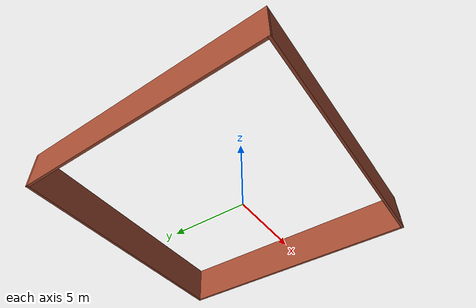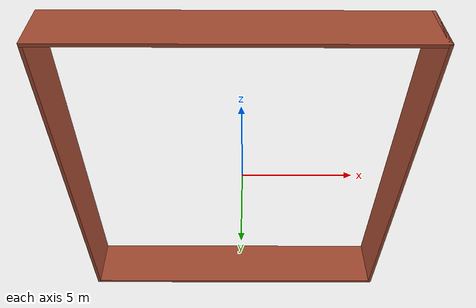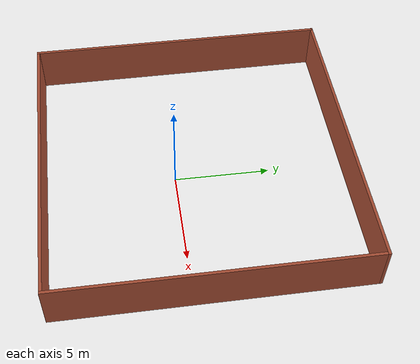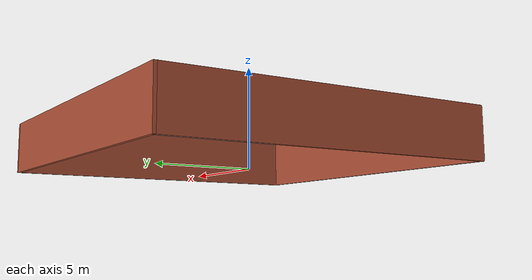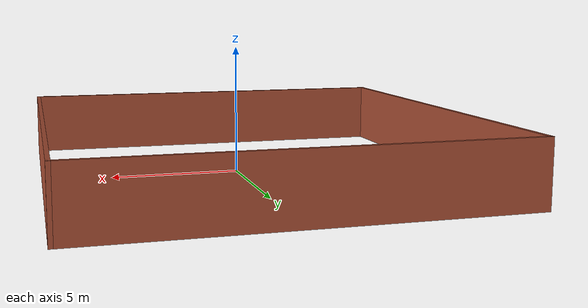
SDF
<?xml version='1.0'?>
<sdf version='1.6'>
  <model name='simple'>
    <pose>-0.345 1.085 0 0 -0 0</pose>
    <link name='Wall_21'>
      <collision name='Wall_21_Collision'>
        <geometry>
          <box>
            <size>16 0.15 2.5</size>
          </box>
        </geometry>
        <pose>0 0 1.25 0 -0 0</pose>
      </collision>
      <visual name='Wall_21_Visual'>
        <pose>0 0 1.25 0 -0 0</pose>
        <geometry>
          <box>
            <size>16 0.15 2.5</size>
          </box>
        </geometry>
        <material>
          <script>
            <uri>file://media/materials/scripts/gazebo.material</uri>
            <name>Gazebo/Bricks</name>
          </script>
          <ambient>1 1 1 1</ambient>
        </material>
        <meta>
          <layer>0</layer>
        </meta>
      </visual>
      <pose>0 -7.925 0 0 -0 0</pose>
    </link>
    <link name='Wall_23'>
      <collision name='Wall_23_Collision'>
        <geometry>
          <box>
            <size>16 0.15 2.5</size>
          </box>
        </geometry>
        <pose>0 0 1.25 0 -0 0</pose>
      </collision>
      <visual name='Wall_23_Visual'>
        <pose>0 0 1.25 0 -0 0</pose>
        <geometry>
          <box>
            <size>16 0.15 2.5</size>
          </box>
        </geometry>
        <material>
          <script>
            <uri>file://media/materials/scripts/gazebo.material</uri>
            <name>Gazebo/Bricks</name>
          </script>
          <ambient>1 1 1 1</ambient>
        </material>
        <meta>
          <layer>0</layer>
        </meta>
      </visual>
      <pose>7.925 0 0 0 -0 1.5708</pose>
    </link>
    <link name='Wall_24'>
      <collision name='Wall_24_Collision'>
        <geometry>
          <box>
            <size>16 0.15 2.5</size>
          </box>
        </geometry>
        <pose>0 0 1.25 0 -0 0</pose>
      </collision>
      <visual name='Wall_24_Visual'>
        <pose>0 0 1.25 0 -0 0</pose>
        <geometry>
          <box>
            <size>16 0.15 2.5</size>
          </box>
        </geometry>
        <material>
          <script>
            <uri>file://media/materials/scripts/gazebo.material</uri>
            <name>Gazebo/Bricks</name>
          </script>
          <ambient>1 1 1 1</ambient>
        </material>
        <meta>
          <layer>0</layer>
        </meta>
      </visual>
      <pose>0 7.925 0 0 -0 3.14159</pose>
    </link>
    <link name='Wall_25'>
      <collision name='Wall_25_Collision'>
        <geometry>
          <box>
            <size>16 0.15 2.5</size>
          </box>
        </geometry>
        <pose>0 0 1.25 0 -0 0</pose>
      </collision>
      <visual name='Wall_25_Visual'>
        <pose>0 0 1.25 0 -0 0</pose>
        <geometry>
          <box>
            <size>16 0.15 2.5</size>
          </box>
        </geometry>
        <material>
          <script>
            <uri>file://media/materials/scripts/gazebo.material</uri>
            <name>Gazebo/Bricks</name>
          </script>
          <ambient>1 1 1 1</ambient>
        </material>
        <meta>
          <layer>0</layer>
        </meta>
      </visual>
      <pose>-7.925 0 0 0 -0 -1.5708</pose>
    </link>
    <static>1</static>
  </model>
</sdf>
